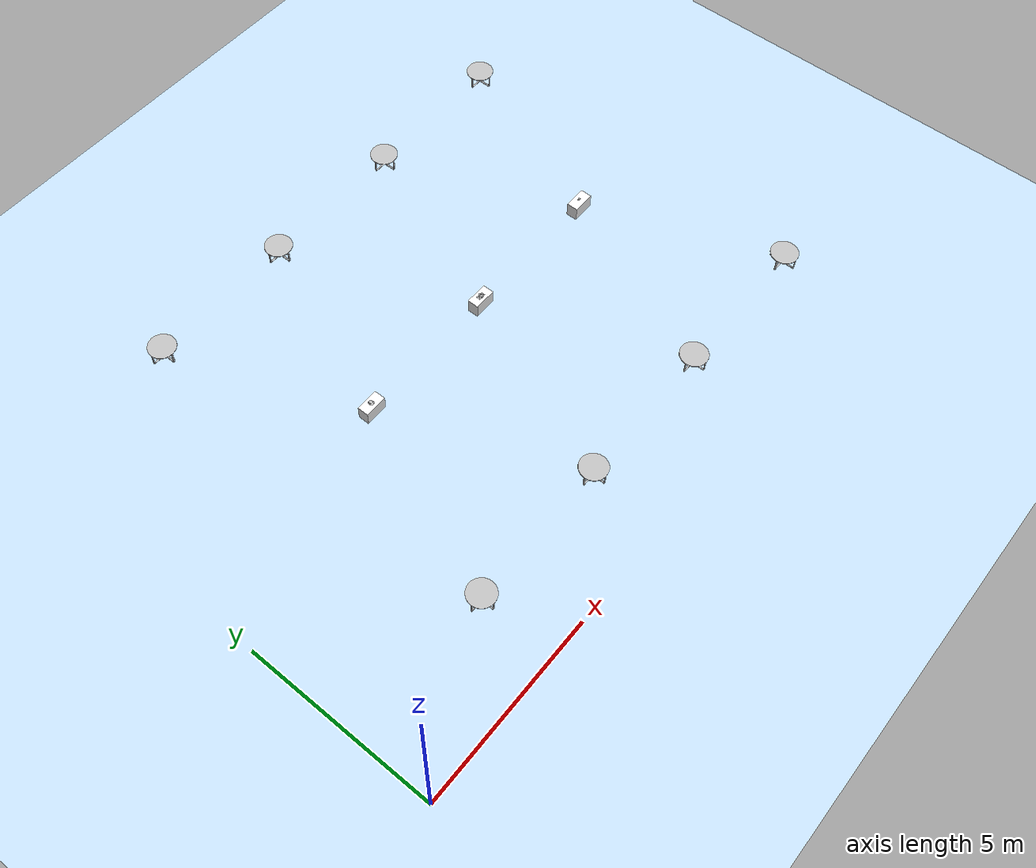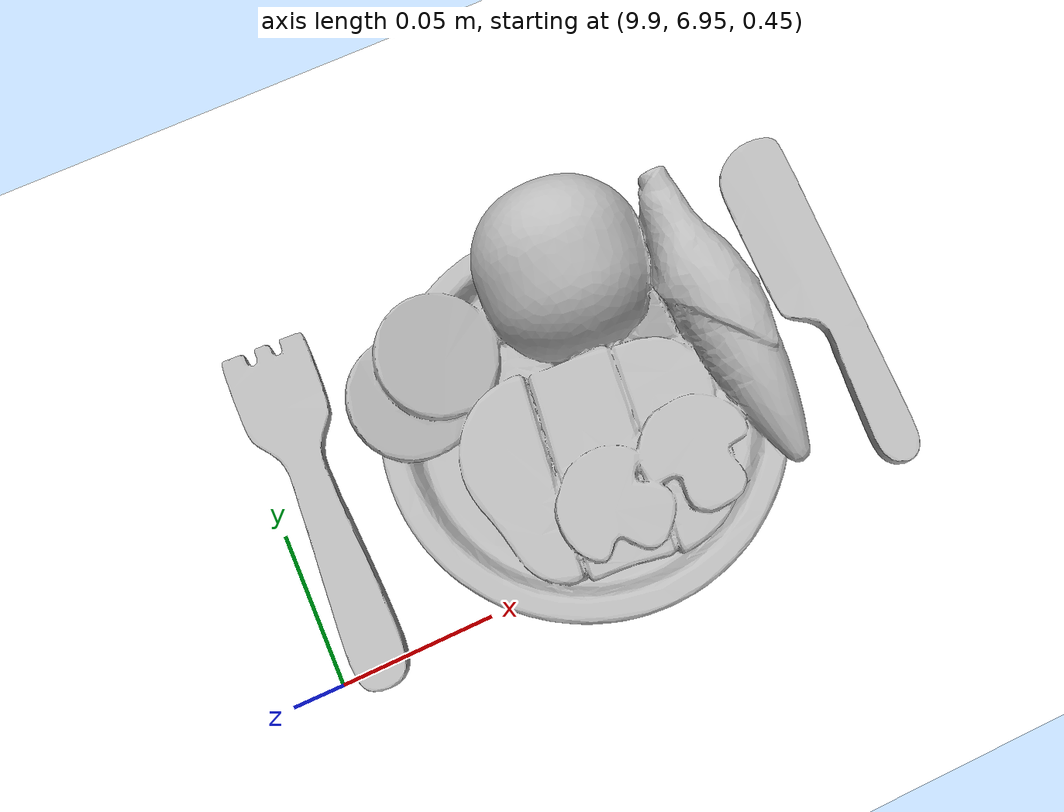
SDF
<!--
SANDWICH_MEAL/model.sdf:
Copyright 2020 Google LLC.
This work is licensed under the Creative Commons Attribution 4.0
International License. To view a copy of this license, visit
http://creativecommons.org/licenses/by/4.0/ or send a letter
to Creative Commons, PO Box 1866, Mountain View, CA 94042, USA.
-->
<sdf version="1.7">
 <world name="food_court">
  <plugin filename="gz-sim-physics-system" name="gz::sim::systems::Physics"/>
  <plugin filename="gz-sim-user-commands-system" name="gz::sim::systems::UserCommands"/>
  <plugin filename="gz-sim-scene-broadcaster-system" name="gz::sim::systems::SceneBroadcaster"/>
  <plugin filename="gz-sim-sensors-system" name="gz::sim::systems::Sensors">
   <render_engine>ogre2</render_engine>
  </plugin>
  <plugin filename="gz-sim-imu-system" name="gz::sim::systems::Imu"/>
  <physics name="1ms" type="ignored">
   <max_step_size>0.001</max_step_size>
   <real_time_factor>1.0</real_time_factor>
  </physics>
  <light type="directional" name="sun">
   <cast_shadows>false</cast_shadows>
   <pose>0 0 10 0 0 0</pose>
   <diffuse>0.8 0.8 0.8 1</diffuse>
   <specular>0.2 0.2 0.2 1</specular>
   <attenuation>
    <range>1000</range>
    <constant>0.9</constant>
    <linear>0.01</linear>
    <quadratic>0.001</quadratic>
   </attenuation>
   <direction>-0.5 0.1 -0.9</direction>
  </light>
  <model name="ground_plane">
   <static>true</static>
   <link name="link">
    <collision name="ground_collision">
     <geometry><plane><normal>0 0 1</normal><size>46 46</size></plane></geometry>
     <surface>
      <friction><mu>1.5</mu><mu2>1.5</mu2></friction>
      <contact><kp>1000000</kp><kd>1</kd></contact>
      <bounce><restitution_coefficient>0</restitution_coefficient></bounce>
     </surface>
    </collision>
    <visual name="ground_visual">
     <geometry><plane><normal>0 0 1</normal><size>45 45</size></plane></geometry>
     <material>
      <ambient>0.75 0.85 0.98 1</ambient>
      <diffuse>0.75 0.85 0.98 1</diffuse>
      <specular>0.05 0.05 0.05 1</specular>
     </material>
    </visual>
   </link>
  </model>
  <include><uri>model://stall_salad</uri><pose>6 7 0.25 0 0 0</pose></include>
  <include><uri>model://stall_chicken</uri><pose>10 7 0.25 0 0 0</pose></include>
  <include><uri>model://stall_drinks</uri><pose>14 7 0.25 0 0 0</pose></include>
  <include><uri>model://SANDWICH_MEAL</uri><name>food1</name><pose>6 7 0.45 0 0 0</pose></include>
  <include><uri>model://STEAK_SET</uri><name>food2</name><pose>10 7 0.45 0 0 0</pose></include>
  <include><uri>model://pepsi2</uri><name>food3</name><pose>14 7 0.45 0 0 0</pose></include>
  <include><uri>model://CoffeeTable</uri><name>coffeetable1</name><pose>4 2 0 0 0 0</pose></include>
  <include><uri>model://CoffeeTable</uri><name>coffeetable2</name><pose>8 2 0 0 0 0</pose></include>
  <include><uri>model://CoffeeTable</uri><name>coffeetable3</name><pose>12 2 0 0 0 0</pose></include>
  <include><uri>model://CoffeeTable</uri><name>coffeetable4</name><pose>16 2 0 0 0 0</pose></include>
  <include><uri>model://CoffeeTable</uri><name>coffeetable5</name><pose>4 12 0 0 0 0</pose></include>
  <include><uri>model://CoffeeTable</uri><name>coffeetable6</name><pose>8 12 0 0 0 0</pose></include>
  <include><uri>model://CoffeeTable</uri><name>coffeetable7</name><pose>12 12 0 0 0 0</pose></include>
  <include><uri>model://CoffeeTable</uri><name>coffeetable8</name><pose>16 12 0 0 0 0</pose></include>
 </world>
</sdf>

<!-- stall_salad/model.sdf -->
<sdf version="1.9">
    <model name="stall_salad">
        <static>true</static>
        <link name="link">
            <collision name="col">
                <geometry><box><size>0.6 0.3 0.4</size></box></geometry>
            </collision>
            <visual name="vis">
                <geometry><box><size>0.6 0.3 0.4</size></box></geometry>
                <material>
                    <ambient>1 1 1 1</ambient>
                    <diffuse>1 1 1 1</diffuse>
                    <specular>0 0 0 1</specular>
                    <pbr>
                        <metal>
                            <albedo_map>model://stall_salad/materials/textures/greensalads.png</albedo_map>
                            <roughness>1.0</roughness>
                            <metalness>0.0</metalness>
                        </metal>
                    </pbr>
                </material>
            </visual>
        </link>
    </model>
</sdf>

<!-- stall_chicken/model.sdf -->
<sdf version="1.9">
    <model name="stall_chicken">
        <static>true</static>
        <link name="link">
            <collision name="col">
                <geometry><box><size>0.6 0.3 0.4</size></box></geometry>
            </collision>
            <visual name="vis">
                <geometry><box><size>0.6 0.3 0.4</size></box></geometry>
                <material>
                    <ambient>1 1 1 1</ambient>
                    <diffuse>1 1 1 1</diffuse>
                    <specular>0 0 0 1</specular>
                    <pbr>
                        <metal>
                            <albedo_map>model://stall_chicken/materials/textures/cookdokoochicken.png</albedo_map>
                            <roughness>1.0</roughness>
                            <metalness>0.0</metalness>
                        </metal>
                    </pbr>
                </material>
            </visual>
        </link>
    </model>
</sdf>

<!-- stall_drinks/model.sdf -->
<sdf version="1.9">
    <model name="stall_drinks">
        <static>true</static>
        <link name="link">
            <collision name="col">
                <geometry><box><size>0.6 0.3 0.4</size></box></geometry>
            </collision>
            <visual name="vis">
                <geometry><box><size>0.6 0.3 0.4</size></box></geometry>
                <material>
                    <ambient>1 1 1 1</ambient>
                    <diffuse>1 1 1 1</diffuse>
                    <specular>0 0 0 1</specular>
                    <pbr>
                        <metal>
                            <albedo_map>model://stall_drinks/materials/textures/colddrinks.png</albedo_map>
                            <roughness>1.0</roughness>
                            <metalness>0.0</metalness>
                        </metal>
                    </pbr>
                </material>
            </visual>
        </link>
    </model>
</sdf>

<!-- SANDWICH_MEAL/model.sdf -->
<sdf version="1.6">
  <model name="SANDWICH_MEAL">
    <link name="link_0">
      <visual name="visual">
        <geometry>
          <mesh>
            <uri>meshes/model.obj</uri>
          </mesh>
        </geometry>
      </visual>
      <collision name="collision_0">
        <geometry>
          <mesh>
            <uri>meshes/model.obj</uri>
          </mesh>
        </geometry>
      <surface>
        <friction>
          <ode>
            <mu>1.5</mu>
            <mu2>1.5</mu2>
          </ode>
        </friction>
        <contact>
          <ode>
            <kp>100000</kp>
            <kd>1.0</kd>
          </ode>
        </contact>
      </surface>
      </collision>
    </link>
  </model>
</sdf>

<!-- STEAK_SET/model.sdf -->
<sdf version="1.6">
  <model name="STEAK_SET">
    <link name="link_0">
      <visual name="visual">
        <geometry>
          <mesh>
            <uri>meshes/model.obj</uri>
          </mesh>
        </geometry>
      </visual>
      <collision name="collision_0">
        <geometry>
          <mesh>
            <uri>meshes/model.obj</uri>
          </mesh>
        </geometry>
        <surface>
          <friction>
            <ode>
              <mu>1.5</mu>
              <mu2>1.5</mu2>
            </ode>
          </friction>

          <contact>
            <ode>
              <kp>100000</kp>
              <kd>1.0</kd>
            </ode>
          </contact>
        </surface>
      </collision>
    </link>
  </model>
</sdf>

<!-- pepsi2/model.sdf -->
<sdf version="1.6">
<model name="pepsi2">
  <link name="link_0">

    <inertial>
      <mass>0.35</mass>
      <inertia>
        <ixx>0.000810</ixx>
        <iyy>0.000810</iyy>
        <izz>0.000306</izz>
        <ixy>0</ixy>
        <ixz>0</ixz>
        <iyz>0</iyz>
      </inertia>
    </inertial>

    <!-- VISUAL -->
    <visual name="visual">
      <geometry>
        <mesh>
          <uri>meshes/model.obj</uri>
          <scale>0.3 0.3 0.3</scale>
        </mesh>
      </geometry>
    </visual>

    <!-- COLLISION — simple box approximating the can -->
    <collision name="collision_0">
      <geometry>
        <box>
          <size>0.068 0.068 0.12</size>
        </box>
      </geometry>
      <surface>
        <friction>
          <ode>
            <mu>1.2</mu>
            <mu2>1.2</mu2>
            <fdir1>1 0 0</fdir1>
            <slip1>0.0</slip1>
            <slip2>0.0</slip2>
          </ode>
        </friction>
        <contact>
          <kp>100000</kp>
          <kd>10</kd>
        </contact>
      </surface>
    </collision>

  </link>
</model>
</sdf>

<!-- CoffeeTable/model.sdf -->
<sdf version="1.6">
  <model name='CoffeeTable'>
    <link name="body">
      <pose>0 0 0 0 0 0</pose>

      <visual name="visual">
        <geometry>
          <mesh>
            <uri>model://CoffeeTable/meshes/CoffeeTable.obj</uri>
            <scale>0.00817 0.00817 0.00817</scale>
          </mesh>
        </geometry>
      </visual>

      <collision name="collision">
        <geometry>
          <mesh>
            <uri>model://CoffeeTable/meshes/CoffeeTable.obj</uri>
            <scale>0.00817 0.00817 0.00817</scale>
          </mesh>
        </geometry>
      </collision>

    </link>
  </model>
</sdf>
